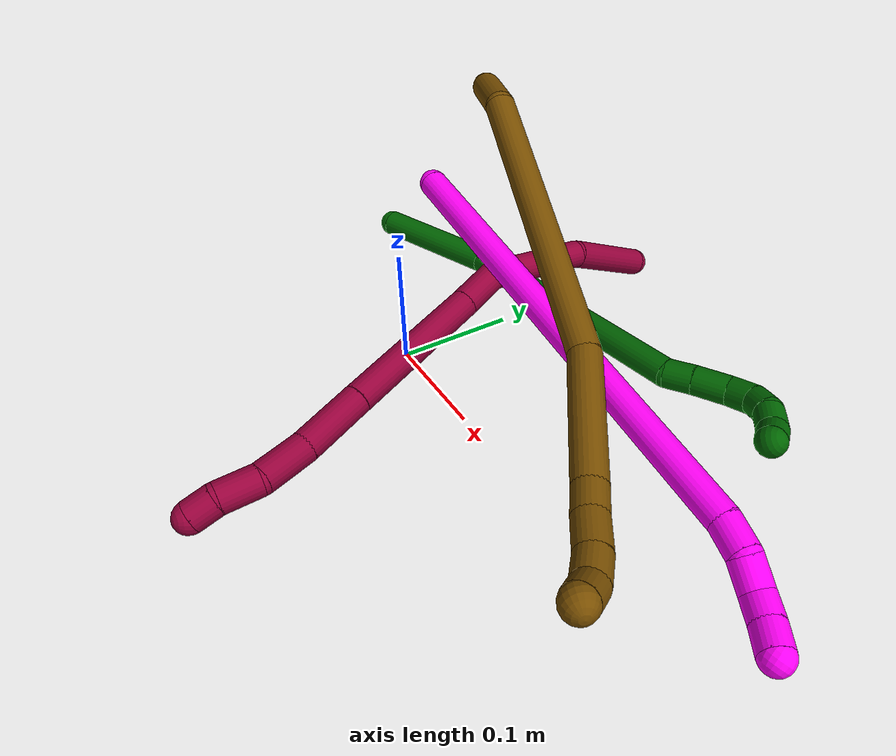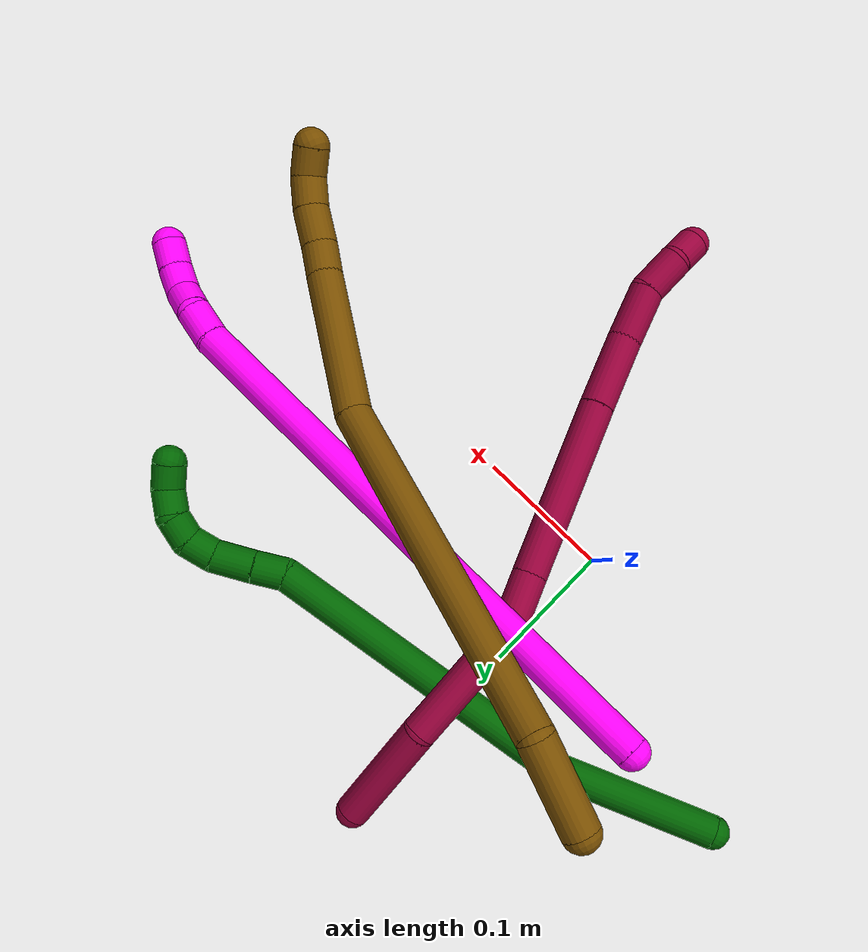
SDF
<sdf version="1.7">
 <world name="default">
  <model name="6">
   <static>0</static>
   <link name="6">
    <collision name="collision-cylinder-e_1_1_4">
     <pose>0.035066 0.021252 0.044017 -0.449797 0.62232 -0.146883</pose>
     <geometry><cylinder><radius>0.0125</radius><length>0.120313</length></cylinder></geometry>
     <surface>
      <friction><ode><mu>1.16</mu><mu2>1.16</mu2><slip1>0</slip1><slip2>0</slip2></ode></friction>
      <contact><ode><kp>1e+06</kp><kd>1</kd><max_vel>0</max_vel><min_depth>0.001</min_depth></ode></contact>
     </surface>
    </collision>
    <visual name="visual-cylinder-e_1_1_4">
     <pose>0.035066 0.021252 0.044017 -0.449797 0.62232 -0.146883</pose>
     <geometry><cylinder><radius>0.0125</radius><length>0.120313</length></cylinder></geometry>
     <material><ambient>0 0.392157 0.003922 1</ambient></material>
    </visual>
    <collision name="collision-cylinder-e_2_4_5">
     <pose>0.150394 0.056611 0.17807 -0.155429 0.722045 -0.058787</pose>
     <geometry><cylinder><radius>0.0125</radius><length>0.242878</length></cylinder></geometry>
     <surface>
      <friction><ode><mu>1.16</mu><mu2>1.16</mu2><slip1>0</slip1><slip2>0</slip2></ode></friction>
      <contact><ode><kp>1e+06</kp><kd>1</kd><max_vel>0</max_vel><min_depth>0.001</min_depth></ode></contact>
     </surface>
    </collision>
    <visual name="visual-cylinder-e_2_4_5">
     <pose>0.150394 0.056611 0.17807 -0.155429 0.722045 -0.058787</pose>
     <geometry><cylinder><radius>0.0125</radius><length>0.242878</length></cylinder></geometry>
     <material><ambient>0 0.392157 0.003922 1</ambient></material>
    </visual>
    <collision name="collision-cylinder-e_3_5_6">
     <pose>0.235993 0.075945 0.277616 -0.502449 0.457126 -0.119265</pose>
     <geometry><cylinder><radius>0.0125</radius><length>0.024186</length></cylinder></geometry>
     <surface>
      <friction><ode><mu>1.16</mu><mu2>1.16</mu2><slip1>0</slip1><slip2>0</slip2></ode></friction>
      <contact><ode><kp>1e+06</kp><kd>1</kd><max_vel>0</max_vel><min_depth>0.001</min_depth></ode></contact>
     </surface>
    </collision>
    <visual name="visual-cylinder-e_3_5_6">
     <pose>0.235993 0.075945 0.277616 -0.502449 0.457126 -0.119265</pose>
     <geometry><cylinder><radius>0.0125</radius><length>0.024186</length></cylinder></geometry>
     <material><ambient>0 0.392157 0.003922 1</ambient></material>
    </visual>
    <collision name="collision-cylinder-e_4_6_7">
     <pose>0.248704 0.087517 0.298719 -0.500905 0.508865 -0.132868</pose>
     <geometry><cylinder><radius>0.0125</radius><length>0.030268</length></cylinder></geometry>
     <surface>
      <friction><ode><mu>1.16</mu><mu2>1.16</mu2><slip1>0</slip1><slip2>0</slip2></ode></friction>
      <contact><ode><kp>1e+06</kp><kd>1</kd><max_vel>0</max_vel><min_depth>0.001</min_depth></ode></contact>
     </surface>
    </collision>
    <visual name="visual-cylinder-e_4_6_7">
     <pose>0.248704 0.087517 0.298719 -0.500905 0.508865 -0.132868</pose>
     <geometry><cylinder><radius>0.0125</radius><length>0.030268</length></cylinder></geometry>
     <material><ambient>0 0.392157 0.003922 1</ambient></material>
    </visual>
    <collision name="collision-cylinder-e_5_7_8">
     <pose>0.261721 0.095209 0.31953 -0.144825 0.544747 -0.040517</pose>
     <geometry><cylinder><radius>0.0125</radius><length>0.021785</length></cylinder></geometry>
     <surface>
      <friction><ode><mu>1.16</mu><mu2>1.16</mu2><slip1>0</slip1><slip2>0</slip2></ode></friction>
      <contact><ode><kp>1e+06</kp><kd>1</kd><max_vel>0</max_vel><min_depth>0.001</min_depth></ode></contact>
     </surface>
    </collision>
    <visual name="visual-cylinder-e_5_7_8">
     <pose>0.261721 0.095209 0.31953 -0.144825 0.544747 -0.040517</pose>
     <geometry><cylinder><radius>0.0125</radius><length>0.021785</length></cylinder></geometry>
     <material><ambient>0 0.392157 0.003922 1</ambient></material>
    </visual>
    <collision name="collision-cylinder-e_6_8_9">
     <pose>0.273285 0.093093 0.336165 0.436498 0.626133 0.143341</pose>
     <geometry><cylinder><radius>0.0125</radius><length>0.0202</length></cylinder></geometry>
     <surface>
      <friction><ode><mu>1.16</mu><mu2>1.16</mu2><slip1>0</slip1><slip2>0</slip2></ode></friction>
      <contact><ode><kp>1e+06</kp><kd>1</kd><max_vel>0</max_vel><min_depth>0.001</min_depth></ode></contact>
     </surface>
    </collision>
    <visual name="visual-cylinder-e_6_8_9">
     <pose>0.273285 0.093093 0.336165 0.436498 0.626133 0.143341</pose>
     <geometry><cylinder><radius>0.0125</radius><length>0.0202</length></cylinder></geometry>
     <material><ambient>0 0.392157 0.003922 1</ambient></material>
    </visual>
    <collision name="collision-cylinder-e_7_9_10">
     <pose>0.287007 0.084265 0.347287 0.966641 0.874584 0.481194</pose>
     <geometry><cylinder><radius>0.0125</radius><length>0.020341</length></cylinder></geometry>
     <surface>
      <friction><ode><mu>1.16</mu><mu2>1.16</mu2><slip1>0</slip1><slip2>0</slip2></ode></friction>
      <contact><ode><kp>1e+06</kp><kd>1</kd><max_vel>0</max_vel><min_depth>0.001</min_depth></ode></contact>
     </surface>
    </collision>
    <visual name="visual-cylinder-e_7_9_10">
     <pose>0.287007 0.084265 0.347287 0.966641 0.874584 0.481194</pose>
     <geometry><cylinder><radius>0.0125</radius><length>0.020341</length></cylinder></geometry>
     <material><ambient>0 0.392157 0.003922 1</ambient></material>
    </visual>
    <collision name="collision-cylinder-e_8_10_2">
     <pose>0.298848 0.070622 0.354931 1.12654 0.41489 0.264284</pose>
     <geometry><cylinder><radius>0.0125</radius><length>0.02003</length></cylinder></geometry>
     <surface>
      <friction><ode><mu>1.16</mu><mu2>1.16</mu2><slip1>0</slip1><slip2>0</slip2></ode></friction>
      <contact><ode><kp>1e+06</kp><kd>1</kd><max_vel>0</max_vel><min_depth>0.001</min_depth></ode></contact>
     </surface>
    </collision>
    <visual name="visual-cylinder-e_8_10_2">
     <pose>0.298848 0.070622 0.354931 1.12654 0.41489 0.264284</pose>
     <geometry><cylinder><radius>0.0125</radius><length>0.02003</length></cylinder></geometry>
     <material><ambient>0 0.392157 0.003922 1</ambient></material>
    </visual>
    <collision name="collision-sphere-2">
     <pose>0.302884 0.062346 0.35887 0 -0 0</pose>
     <geometry><sphere><radius>0.0125</radius></sphere></geometry>
     <surface>
      <friction><ode><mu>1.16</mu><mu2>1.16</mu2><slip1>0</slip1><slip2>0</slip2></ode></friction>
      <contact><ode><kp>1e+06</kp><kd>1</kd><max_vel>0</max_vel><min_depth>0.001</min_depth></ode></contact>
     </surface>
    </collision>
    <visual name="visual-sphere-2">
     <pose>0.302884 0.062346 0.35887 0 -0 0</pose>
     <geometry><sphere><radius>0.0125</radius></sphere></geometry>
     <material><ambient>0 0.392157 0.003922 1</ambient></material>
    </visual>
    <collision name="collision-sphere-10">
     <pose>0.294811 0.078898 0.350992 0 -0 0</pose>
     <geometry><sphere><radius>0.0125</radius></sphere></geometry>
     <surface>
      <friction><ode><mu>1.16</mu><mu2>1.16</mu2><slip1>0</slip1><slip2>0</slip2></ode></friction>
      <contact><ode><kp>1e+06</kp><kd>1</kd><max_vel>0</max_vel><min_depth>0.001</min_depth></ode></contact>
     </surface>
    </collision>
    <visual name="visual-sphere-10">
     <pose>0.294811 0.078898 0.350992 0 -0 0</pose>
     <geometry><sphere><radius>0.0125</radius></sphere></geometry>
     <material><ambient>0 0.392157 0.003922 1</ambient></material>
    </visual>
    <collision name="collision-sphere-9">
     <pose>0.279203 0.089633 0.343581 0 -0 0</pose>
     <geometry><sphere><radius>0.0125</radius></sphere></geometry>
     <surface>
      <friction><ode><mu>1.16</mu><mu2>1.16</mu2><slip1>0</slip1><slip2>0</slip2></ode></friction>
      <contact><ode><kp>1e+06</kp><kd>1</kd><max_vel>0</max_vel><min_depth>0.001</min_depth></ode></contact>
     </surface>
    </collision>
    <visual name="visual-sphere-9">
     <pose>0.279203 0.089633 0.343581 0 -0 0</pose>
     <geometry><sphere><radius>0.0125</radius></sphere></geometry>
     <material><ambient>0 0.392157 0.003922 1</ambient></material>
    </visual>
    <collision name="collision-sphere-4">
     <pose>0.070133 0.042503 0.088034 0 -0 0</pose>
     <geometry><sphere><radius>0.0125</radius></sphere></geometry>
     <surface>
      <friction><ode><mu>1.16</mu><mu2>1.16</mu2><slip1>0</slip1><slip2>0</slip2></ode></friction>
      <contact><ode><kp>1e+06</kp><kd>1</kd><max_vel>0</max_vel><min_depth>0.001</min_depth></ode></contact>
     </surface>
    </collision>
    <visual name="visual-sphere-4">
     <pose>0.070133 0.042503 0.088034 0 -0 0</pose>
     <geometry><sphere><radius>0.0125</radius></sphere></geometry>
     <material><ambient>0 0.392157 0.003922 1</ambient></material>
    </visual>
    <collision name="collision-sphere-1">
     <geometry><sphere><radius>0.0125</radius></sphere></geometry>
     <surface>
      <friction><ode><mu>1.16</mu><mu2>1.16</mu2><slip1>0</slip1><slip2>0</slip2></ode></friction>
      <contact><ode><kp>1e+06</kp><kd>1</kd><max_vel>0</max_vel><min_depth>0.001</min_depth></ode></contact>
     </surface>
    </collision>
    <visual name="visual-sphere-1">
     <geometry><sphere><radius>0.0125</radius></sphere></geometry>
     <material><ambient>0 0.392157 0.003922 1</ambient></material>
    </visual>
    <collision name="collision-sphere-8">
     <pose>0.267366 0.096553 0.328748 0 -0 0</pose>
     <geometry><sphere><radius>0.0125</radius></sphere></geometry>
     <surface>
      <friction><ode><mu>1.16</mu><mu2>1.16</mu2><slip1>0</slip1><slip2>0</slip2></ode></friction>
      <contact><ode><kp>1e+06</kp><kd>1</kd><max_vel>0</max_vel><min_depth>0.001</min_depth></ode></contact>
     </surface>
    </collision>
    <visual name="visual-sphere-8">
     <pose>0.267366 0.096553 0.328748 0 -0 0</pose>
     <geometry><sphere><radius>0.0125</radius></sphere></geometry>
     <material><ambient>0 0.392157 0.003922 1</ambient></material>
    </visual>
    <collision name="collision-sphere-5">
     <pose>0.230656 0.070719 0.268106 0 -0 0</pose>
     <geometry><sphere><radius>0.0125</radius></sphere></geometry>
     <surface>
      <friction><ode><mu>1.16</mu><mu2>1.16</mu2><slip1>0</slip1><slip2>0</slip2></ode></friction>
      <contact><ode><kp>1e+06</kp><kd>1</kd><max_vel>0</max_vel><min_depth>0.001</min_depth></ode></contact>
     </surface>
    </collision>
    <visual name="visual-sphere-5">
     <pose>0.230656 0.070719 0.268106 0 -0 0</pose>
     <geometry><sphere><radius>0.0125</radius></sphere></geometry>
     <material><ambient>0 0.392157 0.003922 1</ambient></material>
    </visual>
    <collision name="collision-sphere-6">
     <pose>0.241331 0.081171 0.287126 0 -0 0</pose>
     <geometry><sphere><radius>0.0125</radius></sphere></geometry>
     <surface>
      <friction><ode><mu>1.16</mu><mu2>1.16</mu2><slip1>0</slip1><slip2>0</slip2></ode></friction>
      <contact><ode><kp>1e+06</kp><kd>1</kd><max_vel>0</max_vel><min_depth>0.001</min_depth></ode></contact>
     </surface>
    </collision>
    <visual name="visual-sphere-6">
     <pose>0.241331 0.081171 0.287126 0 -0 0</pose>
     <geometry><sphere><radius>0.0125</radius></sphere></geometry>
     <material><ambient>0 0.392157 0.003922 1</ambient></material>
    </visual>
    <collision name="collision-sphere-7">
     <pose>0.256077 0.093864 0.310311 0 -0 0</pose>
     <geometry><sphere><radius>0.0125</radius></sphere></geometry>
     <surface>
      <friction><ode><mu>1.16</mu><mu2>1.16</mu2><slip1>0</slip1><slip2>0</slip2></ode></friction>
      <contact><ode><kp>1e+06</kp><kd>1</kd><max_vel>0</max_vel><min_depth>0.001</min_depth></ode></contact>
     </surface>
    </collision>
    <visual name="visual-sphere-7">
     <pose>0.256077 0.093864 0.310311 0 -0 0</pose>
     <geometry><sphere><radius>0.0125</radius></sphere></geometry>
     <material><ambient>0 0.392157 0.003922 1</ambient></material>
    </visual>
    <inertial>
     <pose>0.154055 0.055751 0.184452 0 -0 0</pose>
     <mass>0.5</mass>
     <inertia>
      <ixx>0.000985</ixx>
      <ixy>0</ixy>
      <ixz>0</ixz>
      <iyy>0.001277</iyy>
      <iyz>0</iyz>
      <izz>-0.001054</izz>
     </inertia>
    </inertial>
   </link>
   <pose>-0.196456 0.084217 0.01472 -0.519077 0.704249 -0.349433</pose>
  </model>
  <model name="8">
   <static>0</static>
   <link name="8">
    <collision name="collision-cylinder-e_1_1_4">
     <pose>-0.009917 0.004295 -0.042234 -3.04026 -0.229482 2.31254</pose>
     <geometry><cylinder><radius>0.0125</radius><length>0.087189</length></cylinder></geometry>
     <surface>
      <friction><ode><mu>1.16</mu><mu2>1.16</mu2><slip1>0</slip1><slip2>0</slip2></ode></friction>
      <contact><ode><kp>1e+06</kp><kd>1</kd><max_vel>0</max_vel><min_depth>0.001</min_depth></ode></contact>
     </surface>
    </collision>
    <visual name="visual-cylinder-e_1_1_4">
     <pose>-0.009917 0.004295 -0.042234 -3.04026 -0.229482 2.31254</pose>
     <geometry><cylinder><radius>0.0125</radius><length>0.087189</length></cylinder></geometry>
     <material><ambient>0.584314 0 0.227451 1</ambient></material>
    </visual>
    <collision name="collision-cylinder-e_2_4_5">
     <pose>-0.015026 0.009467 -0.13114 -3.12279 0.102614 -2.77946</pose>
     <geometry><cylinder><radius>0.0125</radius><length>0.093854</length></cylinder></geometry>
     <surface>
      <friction><ode><mu>1.16</mu><mu2>1.16</mu2><slip1>0</slip1><slip2>0</slip2></ode></friction>
      <contact><ode><kp>1e+06</kp><kd>1</kd><max_vel>0</max_vel><min_depth>0.001</min_depth></ode></contact>
     </surface>
    </collision>
    <visual name="visual-cylinder-e_2_4_5">
     <pose>-0.015026 0.009467 -0.13114 -3.12279 0.102614 -2.77946</pose>
     <geometry><cylinder><radius>0.0125</radius><length>0.093854</length></cylinder></geometry>
     <material><ambient>0.584314 0 0.227451 1</ambient></material>
    </visual>
    <collision name="collision-cylinder-e_3_5_6">
     <pose>-0.005387 0.002519 -0.196423 2.74357 0.234907 1.05874</pose>
     <geometry><cylinder><radius>0.0125</radius><length>0.041519</length></cylinder></geometry>
     <surface>
      <friction><ode><mu>1.16</mu><mu2>1.16</mu2><slip1>0</slip1><slip2>0</slip2></ode></friction>
      <contact><ode><kp>1e+06</kp><kd>1</kd><max_vel>0</max_vel><min_depth>0.001</min_depth></ode></contact>
     </surface>
    </collision>
    <visual name="visual-cylinder-e_3_5_6">
     <pose>-0.005387 0.002519 -0.196423 2.74357 0.234907 1.05874</pose>
     <geometry><cylinder><radius>0.0125</radius><length>0.041519</length></cylinder></geometry>
     <material><ambient>0.584314 0 0.227451 1</ambient></material>
    </visual>
    <collision name="collision-cylinder-e_4_6_7">
     <pose>0.012442 -0.028807 -0.274762 2.76674 0.199803 0.972398</pose>
     <geometry><cylinder><radius>0.0125</radius><length>0.130975</length></cylinder></geometry>
     <surface>
      <friction><ode><mu>1.16</mu><mu2>1.16</mu2><slip1>0</slip1><slip2>0</slip2></ode></friction>
      <contact><ode><kp>1e+06</kp><kd>1</kd><max_vel>0</max_vel><min_depth>0.001</min_depth></ode></contact>
     </surface>
    </collision>
    <visual name="visual-cylinder-e_4_6_7">
     <pose>0.012442 -0.028807 -0.274762 2.76674 0.199803 0.972398</pose>
     <geometry><cylinder><radius>0.0125</radius><length>0.130975</length></cylinder></geometry>
     <material><ambient>0.584314 0 0.227451 1</ambient></material>
    </visual>
    <collision name="collision-cylinder-e_5_7_8">
     <pose>0.031868 -0.061995 -0.359298 2.7693 0.236846 1.1269</pose>
     <geometry><cylinder><radius>0.0125</radius><length>0.054796</length></cylinder></geometry>
     <surface>
      <friction><ode><mu>1.16</mu><mu2>1.16</mu2><slip1>0</slip1><slip2>0</slip2></ode></friction>
      <contact><ode><kp>1e+06</kp><kd>1</kd><max_vel>0</max_vel><min_depth>0.001</min_depth></ode></contact>
     </surface>
    </collision>
    <visual name="visual-cylinder-e_5_7_8">
     <pose>0.031868 -0.061995 -0.359298 2.7693 0.236846 1.1269</pose>
     <geometry><cylinder><radius>0.0125</radius><length>0.054796</length></cylinder></geometry>
     <material><ambient>0.584314 0 0.227451 1</ambient></material>
    </visual>
    <collision name="collision-cylinder-e_6_8_9">
     <pose>0.040616 -0.077514 -0.403138 2.84427 0.115993 0.739673</pose>
     <geometry><cylinder><radius>0.0125</radius><length>0.040078</length></cylinder></geometry>
     <surface>
      <friction><ode><mu>1.16</mu><mu2>1.16</mu2><slip1>0</slip1><slip2>0</slip2></ode></friction>
      <contact><ode><kp>1e+06</kp><kd>1</kd><max_vel>0</max_vel><min_depth>0.001</min_depth></ode></contact>
     </surface>
    </collision>
    <visual name="visual-cylinder-e_6_8_9">
     <pose>0.040616 -0.077514 -0.403138 2.84427 0.115993 0.739673</pose>
     <geometry><cylinder><radius>0.0125</radius><length>0.040078</length></cylinder></geometry>
     <material><ambient>0.584314 0 0.227451 1</ambient></material>
    </visual>
    <collision name="collision-cylinder-e_7_9_10">
     <pose>0.046973 -0.083292 -0.4372 -3.13803 0.262402 -3.11461</pose>
     <geometry><cylinder><radius>0.0125</radius><length>0.031129</length></cylinder></geometry>
     <surface>
      <friction><ode><mu>1.16</mu><mu2>1.16</mu2><slip1>0</slip1><slip2>0</slip2></ode></friction>
      <contact><ode><kp>1e+06</kp><kd>1</kd><max_vel>0</max_vel><min_depth>0.001</min_depth></ode></contact>
     </surface>
    </collision>
    <visual name="visual-cylinder-e_7_9_10">
     <pose>0.046973 -0.083292 -0.4372 -3.13803 0.262402 -3.11461</pose>
     <geometry><cylinder><radius>0.0125</radius><length>0.031129</length></cylinder></geometry>
     <material><ambient>0.584314 0 0.227451 1</ambient></material>
    </visual>
    <collision name="collision-cylinder-e_8_10_2">
     <pose>0.056377 -0.084144 -0.460894 3.03742 0.552285 2.77773</pose>
     <geometry><cylinder><radius>0.0125</radius><length>0.02046</length></cylinder></geometry>
     <surface>
      <friction><ode><mu>1.16</mu><mu2>1.16</mu2><slip1>0</slip1><slip2>0</slip2></ode></friction>
      <contact><ode><kp>1e+06</kp><kd>1</kd><max_vel>0</max_vel><min_depth>0.001</min_depth></ode></contact>
     </surface>
    </collision>
    <visual name="visual-cylinder-e_8_10_2">
     <pose>0.056377 -0.084144 -0.460894 3.03742 0.552285 2.77773</pose>
     <geometry><cylinder><radius>0.0125</radius><length>0.02046</length></cylinder></geometry>
     <material><ambient>0.584314 0 0.227451 1</ambient></material>
    </visual>
    <collision name="collision-sphere-2">
     <pose>0.061744 -0.08505 -0.469556 0 -0 0</pose>
     <geometry><sphere><radius>0.0125</radius></sphere></geometry>
     <surface>
      <friction><ode><mu>1.16</mu><mu2>1.16</mu2><slip1>0</slip1><slip2>0</slip2></ode></friction>
      <contact><ode><kp>1e+06</kp><kd>1</kd><max_vel>0</max_vel><min_depth>0.001</min_depth></ode></contact>
     </surface>
    </collision>
    <visual name="visual-sphere-2">
     <pose>0.061744 -0.08505 -0.469556 0 -0 0</pose>
     <geometry><sphere><radius>0.0125</radius></sphere></geometry>
     <material><ambient>0.584314 0 0.227451 1</ambient></material>
    </visual>
    <collision name="collision-sphere-10">
     <pose>0.05101 -0.083239 -0.452232 0 -0 0</pose>
     <geometry><sphere><radius>0.0125</radius></sphere></geometry>
     <surface>
      <friction><ode><mu>1.16</mu><mu2>1.16</mu2><slip1>0</slip1><slip2>0</slip2></ode></friction>
      <contact><ode><kp>1e+06</kp><kd>1</kd><max_vel>0</max_vel><min_depth>0.001</min_depth></ode></contact>
     </surface>
    </collision>
    <visual name="visual-sphere-10">
     <pose>0.05101 -0.083239 -0.452232 0 -0 0</pose>
     <geometry><sphere><radius>0.0125</radius></sphere></geometry>
     <material><ambient>0.584314 0 0.227451 1</ambient></material>
    </visual>
    <collision name="collision-sphere-9">
     <pose>0.042935 -0.083346 -0.422169 0 -0 0</pose>
     <geometry><sphere><radius>0.0125</radius></sphere></geometry>
     <surface>
      <friction><ode><mu>1.16</mu><mu2>1.16</mu2><slip1>0</slip1><slip2>0</slip2></ode></friction>
      <contact><ode><kp>1e+06</kp><kd>1</kd><max_vel>0</max_vel><min_depth>0.001</min_depth></ode></contact>
     </surface>
    </collision>
    <visual name="visual-sphere-9">
     <pose>0.042935 -0.083346 -0.422169 0 -0 0</pose>
     <geometry><sphere><radius>0.0125</radius></sphere></geometry>
     <material><ambient>0.584314 0 0.227451 1</ambient></material>
    </visual>
    <collision name="collision-sphere-4">
     <pose>-0.019833 0.008589 -0.084468 0 -0 0</pose>
     <geometry><sphere><radius>0.0125</radius></sphere></geometry>
     <surface>
      <friction><ode><mu>1.16</mu><mu2>1.16</mu2><slip1>0</slip1><slip2>0</slip2></ode></friction>
      <contact><ode><kp>1e+06</kp><kd>1</kd><max_vel>0</max_vel><min_depth>0.001</min_depth></ode></contact>
     </surface>
    </collision>
    <visual name="visual-sphere-4">
     <pose>-0.019833 0.008589 -0.084468 0 -0 0</pose>
     <geometry><sphere><radius>0.0125</radius></sphere></geometry>
     <material><ambient>0.584314 0 0.227451 1</ambient></material>
    </visual>
    <collision name="collision-sphere-1">
     <geometry><sphere><radius>0.0125</radius></sphere></geometry>
     <surface>
      <friction><ode><mu>1.16</mu><mu2>1.16</mu2><slip1>0</slip1><slip2>0</slip2></ode></friction>
      <contact><ode><kp>1e+06</kp><kd>1</kd><max_vel>0</max_vel><min_depth>0.001</min_depth></ode></contact>
     </surface>
    </collision>
    <visual name="visual-sphere-1">
     <geometry><sphere><radius>0.0125</radius></sphere></geometry>
     <material><ambient>0.584314 0 0.227451 1</ambient></material>
    </visual>
    <collision name="collision-sphere-8">
     <pose>0.038297 -0.071683 -0.384107 0 -0 0</pose>
     <geometry><sphere><radius>0.0125</radius></sphere></geometry>
     <surface>
      <friction><ode><mu>1.16</mu><mu2>1.16</mu2><slip1>0</slip1><slip2>0</slip2></ode></friction>
      <contact><ode><kp>1e+06</kp><kd>1</kd><max_vel>0</max_vel><min_depth>0.001</min_depth></ode></contact>
     </surface>
    </collision>
    <visual name="visual-sphere-8">
     <pose>0.038297 -0.071683 -0.384107 0 -0 0</pose>
     <geometry><sphere><radius>0.0125</radius></sphere></geometry>
     <material><ambient>0.584314 0 0.227451 1</ambient></material>
    </visual>
    <collision name="collision-sphere-5">
     <pose>-0.010219 0.010344 -0.177811 0 -0 0</pose>
     <geometry><sphere><radius>0.0125</radius></sphere></geometry>
     <surface>
      <friction><ode><mu>1.16</mu><mu2>1.16</mu2><slip1>0</slip1><slip2>0</slip2></ode></friction>
      <contact><ode><kp>1e+06</kp><kd>1</kd><max_vel>0</max_vel><min_depth>0.001</min_depth></ode></contact>
     </surface>
    </collision>
    <visual name="visual-sphere-5">
     <pose>-0.010219 0.010344 -0.177811 0 -0 0</pose>
     <geometry><sphere><radius>0.0125</radius></sphere></geometry>
     <material><ambient>0.584314 0 0.227451 1</ambient></material>
    </visual>
    <collision name="collision-sphere-6">
     <pose>-0.000556 -0.005306 -0.215034 0 -0 0</pose>
     <geometry><sphere><radius>0.0125</radius></sphere></geometry>
     <surface>
      <friction><ode><mu>1.16</mu><mu2>1.16</mu2><slip1>0</slip1><slip2>0</slip2></ode></friction>
      <contact><ode><kp>1e+06</kp><kd>1</kd><max_vel>0</max_vel><min_depth>0.001</min_depth></ode></contact>
     </surface>
    </collision>
    <visual name="visual-sphere-6">
     <pose>-0.000556 -0.005306 -0.215034 0 -0 0</pose>
     <geometry><sphere><radius>0.0125</radius></sphere></geometry>
     <material><ambient>0.584314 0 0.227451 1</ambient></material>
    </visual>
    <collision name="collision-sphere-7">
     <pose>0.02544 -0.052307 -0.334489 0 -0 0</pose>
     <geometry><sphere><radius>0.0125</radius></sphere></geometry>
     <surface>
      <friction><ode><mu>1.16</mu><mu2>1.16</mu2><slip1>0</slip1><slip2>0</slip2></ode></friction>
      <contact><ode><kp>1e+06</kp><kd>1</kd><max_vel>0</max_vel><min_depth>0.001</min_depth></ode></contact>
     </surface>
    </collision>
    <visual name="visual-sphere-7">
     <pose>0.02544 -0.052307 -0.334489 0 -0 0</pose>
     <geometry><sphere><radius>0.0125</radius></sphere></geometry>
     <material><ambient>0.584314 0 0.227451 1</ambient></material>
    </visual>
    <inertial>
     <pose>0.010242 -0.026447 -0.238034 0 -0 0</pose>
     <mass>0.5</mass>
     <inertia><ixx>0.000213</ixx><ixy>0</ixy><ixz>0</ixz><iyy>0.000202</iyy><iyz>0</iyz><izz>-5e-06</izz></inertia>
    </inertial>
   </link>
   <pose>0.002271 0.252331 0.014857 2.07602 1.14416 -2.57102</pose>
  </model>
  <model name="10">
   <static>0</static>
   <link name="10">
    <collision name="collision-cylinder-e_1_1_4">
     <pose>0.188532 0.059559 0.053458 -0.839329 1.16935 -0.574291</pose>
     <geometry><cylinder><radius>0.0125</radius><length>0.409632</length></cylinder></geometry>
     <surface>
      <friction><ode><mu>1.16</mu><mu2>1.16</mu2><slip1>0</slip1><slip2>0</slip2></ode></friction>
      <contact><ode><kp>1e+06</kp><kd>1</kd><max_vel>0</max_vel><min_depth>0.001</min_depth></ode></contact>
     </surface>
    </collision>
    <visual name="visual-cylinder-e_1_1_4">
     <pose>0.188532 0.059559 0.053458 -0.839329 1.16935 -0.574291</pose>
     <geometry><cylinder><radius>0.0125</radius><length>0.409632</length></cylinder></geometry>
     <material><ambient>1 0 0.964706 1</ambient></material>
    </visual>
    <collision name="collision-cylinder-e_2_4_5">
     <pose>0.387838 0.123769 0.11239 -0.704354 0.98277 -0.388389</pose>
     <geometry><cylinder><radius>0.0125</radius><length>0.025896</length></cylinder></geometry>
     <surface>
      <friction><ode><mu>1.16</mu><mu2>1.16</mu2><slip1>0</slip1><slip2>0</slip2></ode></friction>
      <contact><ode><kp>1e+06</kp><kd>1</kd><max_vel>0</max_vel><min_depth>0.001</min_depth></ode></contact>
     </surface>
    </collision>
    <visual name="visual-cylinder-e_2_4_5">
     <pose>0.387838 0.123769 0.11239 -0.704354 0.98277 -0.388389</pose>
     <geometry><cylinder><radius>0.0125</radius><length>0.025896</length></cylinder></geometry>
     <material><ambient>1 0 0.964706 1</ambient></material>
    </visual>
    <collision name="collision-cylinder-e_3_5_6">
     <pose>0.407976 0.12848 0.125432 -0.007832 0.891031 -0.00374</pose>
     <geometry><cylinder><radius>0.0125</radius><length>0.024084</length></cylinder></geometry>
     <surface>
      <friction><ode><mu>1.16</mu><mu2>1.16</mu2><slip1>0</slip1><slip2>0</slip2></ode></friction>
      <contact><ode><kp>1e+06</kp><kd>1</kd><max_vel>0</max_vel><min_depth>0.001</min_depth></ode></contact>
     </surface>
    </collision>
    <visual name="visual-cylinder-e_3_5_6">
     <pose>0.407976 0.12848 0.125432 -0.007832 0.891031 -0.00374</pose>
     <geometry><cylinder><radius>0.0125</radius><length>0.024084</length></cylinder></geometry>
     <material><ambient>1 0 0.964706 1</ambient></material>
    </visual>
    <collision name="collision-cylinder-e_4_6_7">
     <pose>0.42407 0.133563 0.13852 -0.738615 0.733718 -0.295299</pose>
     <geometry><cylinder><radius>0.0125</radius><length>0.020097</length></cylinder></geometry>
     <surface>
      <friction><ode><mu>1.16</mu><mu2>1.16</mu2><slip1>0</slip1><slip2>0</slip2></ode></friction>
      <contact><ode><kp>1e+06</kp><kd>1</kd><max_vel>0</max_vel><min_depth>0.001</min_depth></ode></contact>
     </surface>
    </collision>
    <visual name="visual-cylinder-e_4_6_7">
     <pose>0.42407 0.133563 0.13852 -0.738615 0.733718 -0.295299</pose>
     <geometry><cylinder><radius>0.0125</radius><length>0.020097</length></cylinder></geometry>
     <material><ambient>1 0 0.964706 1</ambient></material>
    </visual>
    <collision name="collision-cylinder-e_5_7_2">
     <pose>0.436904 0.144232 0.149853 -0.770517 0.6457 -0.269693</pose>
     <geometry><cylinder><radius>0.0125</radius><length>0.020292</length></cylinder></geometry>
     <surface>
      <friction><ode><mu>1.16</mu><mu2>1.16</mu2><slip1>0</slip1><slip2>0</slip2></ode></friction>
      <contact><ode><kp>1e+06</kp><kd>1</kd><max_vel>0</max_vel><min_depth>0.001</min_depth></ode></contact>
     </surface>
    </collision>
    <visual name="visual-cylinder-e_5_7_2">
     <pose>0.436904 0.144232 0.149853 -0.770517 0.6457 -0.269693</pose>
     <geometry><cylinder><radius>0.0125</radius><length>0.020292</length></cylinder></geometry>
     <material><ambient>1 0 0.964706 1</ambient></material>
    </visual>
    <collision name="collision-sphere-2">
     <pose>0.44301 0.149876 0.155667 0 -0 0</pose>
     <geometry><sphere><radius>0.0125</radius></sphere></geometry>
     <surface>
      <friction><ode><mu>1.16</mu><mu2>1.16</mu2><slip1>0</slip1><slip2>0</slip2></ode></friction>
      <contact><ode><kp>1e+06</kp><kd>1</kd><max_vel>0</max_vel><min_depth>0.001</min_depth></ode></contact>
     </surface>
    </collision>
    <visual name="visual-sphere-2">
     <pose>0.44301 0.149876 0.155667 0 -0 0</pose>
     <geometry><sphere><radius>0.0125</radius></sphere></geometry>
     <material><ambient>1 0 0.964706 1</ambient></material>
    </visual>
    <collision name="collision-sphere-7">
     <pose>0.430799 0.138588 0.144038 0 -0 0</pose>
     <geometry><sphere><radius>0.0125</radius></sphere></geometry>
     <surface>
      <friction><ode><mu>1.16</mu><mu2>1.16</mu2><slip1>0</slip1><slip2>0</slip2></ode></friction>
      <contact><ode><kp>1e+06</kp><kd>1</kd><max_vel>0</max_vel><min_depth>0.001</min_depth></ode></contact>
     </surface>
    </collision>
    <visual name="visual-sphere-7">
     <pose>0.430799 0.138588 0.144038 0 -0 0</pose>
     <geometry><sphere><radius>0.0125</radius></sphere></geometry>
     <material><ambient>1 0 0.964706 1</ambient></material>
    </visual>
    <collision name="collision-sphere-6">
     <pose>0.417341 0.128539 0.133002 0 -0 0</pose>
     <geometry><sphere><radius>0.0125</radius></sphere></geometry>
     <surface>
      <friction><ode><mu>1.16</mu><mu2>1.16</mu2><slip1>0</slip1><slip2>0</slip2></ode></friction>
      <contact><ode><kp>1e+06</kp><kd>1</kd><max_vel>0</max_vel><min_depth>0.001</min_depth></ode></contact>
     </surface>
    </collision>
    <visual name="visual-sphere-6">
     <pose>0.417341 0.128539 0.133002 0 -0 0</pose>
     <geometry><sphere><radius>0.0125</radius></sphere></geometry>
     <material><ambient>1 0 0.964706 1</ambient></material>
    </visual>
    <collision name="collision-sphere-5">
     <pose>0.398611 0.12842 0.117863 0 -0 0</pose>
     <geometry><sphere><radius>0.0125</radius></sphere></geometry>
     <surface>
      <friction><ode><mu>1.16</mu><mu2>1.16</mu2><slip1>0</slip1><slip2>0</slip2></ode></friction>
      <contact><ode><kp>1e+06</kp><kd>1</kd><max_vel>0</max_vel><min_depth>0.001</min_depth></ode></contact>
     </surface>
    </collision>
    <visual name="visual-sphere-5">
     <pose>0.398611 0.12842 0.117863 0 -0 0</pose>
     <geometry><sphere><radius>0.0125</radius></sphere></geometry>
     <material><ambient>1 0 0.964706 1</ambient></material>
    </visual>
    <collision name="collision-sphere-1">
     <geometry><sphere><radius>0.0125</radius></sphere></geometry>
     <surface>
      <friction><ode><mu>1.16</mu><mu2>1.16</mu2><slip1>0</slip1><slip2>0</slip2></ode></friction>
      <contact><ode><kp>1e+06</kp><kd>1</kd><max_vel>0</max_vel><min_depth>0.001</min_depth></ode></contact>
     </surface>
    </collision>
    <visual name="visual-sphere-1">
     <geometry><sphere><radius>0.0125</radius></sphere></geometry>
     <material><ambient>1 0 0.964706 1</ambient></material>
    </visual>
    <collision name="collision-sphere-4">
     <pose>0.377065 0.119118 0.106916 0 -0 0</pose>
     <geometry><sphere><radius>0.0125</radius></sphere></geometry>
     <surface>
      <friction><ode><mu>1.16</mu><mu2>1.16</mu2><slip1>0</slip1><slip2>0</slip2></ode></friction>
      <contact><ode><kp>1e+06</kp><kd>1</kd><max_vel>0</max_vel><min_depth>0.001</min_depth></ode></contact>
     </surface>
    </collision>
    <visual name="visual-sphere-4">
     <pose>0.377065 0.119118 0.106916 0 -0 0</pose>
     <geometry><sphere><radius>0.0125</radius></sphere></geometry>
     <material><ambient>1 0 0.964706 1</ambient></material>
    </visual>
    <inertial>
     <pose>0.228972 0.072615 0.067308 0 -0 0</pose>
     <mass>0.5</mass>
     <inertia>
      <ixx>0.000703</ixx>
      <ixy>0</ixy>
      <ixz>0</ixz>
      <iyy>0.004157</iyy>
      <iyz>0</iyz>
      <izz>-0.006953</izz>
     </inertia>
    </inertial>
   </link>
   <pose>-0.094087 0.082696 0.105833 2.27967 0.240067 0.387652</pose>
  </model>
  <model name="12">
   <static>0</static>
   <link name="12">
    <collision name="collision-cylinder-e_1_1_4">
     <pose>-0.000456 -0.000105 -0.030947 3.1382 -0.014726 -2.68847</pose>
     <geometry><cylinder><radius>0.0125</radius><length>0.061902</length></cylinder></geometry>
     <surface>
      <friction><ode><mu>1.16</mu><mu2>1.16</mu2><slip1>0</slip1><slip2>0</slip2></ode></friction>
      <contact><ode><kp>1e+06</kp><kd>1</kd><max_vel>0</max_vel><min_depth>0.001</min_depth></ode></contact>
     </surface>
    </collision>
    <visual name="visual-cylinder-e_1_1_4">
     <pose>-0.000456 -0.000105 -0.030947 3.1382 -0.014726 -2.68847</pose>
     <geometry><cylinder><radius>0.0125</radius><length>0.061902</length></cylinder></geometry>
     <material><ambient>0.466667 0.301961 0 1</ambient></material>
    </visual>
    <collision name="collision-cylinder-e_2_4_5">
     <pose>0.036393 -0.043047 -0.169388 2.76237 0.311862 1.37261</pose>
     <geometry><cylinder><radius>0.0125</radius><length>0.243157</length></cylinder></geometry>
     <surface>
      <friction><ode><mu>1.16</mu><mu2>1.16</mu2><slip1>0</slip1><slip2>0</slip2></ode></friction>
      <contact><ode><kp>1e+06</kp><kd>1</kd><max_vel>0</max_vel><min_depth>0.001</min_depth></ode></contact>
     </surface>
    </collision>
    <visual name="visual-cylinder-e_2_4_5">
     <pose>0.036393 -0.043047 -0.169388 2.76237 0.311862 1.37261</pose>
     <geometry><cylinder><radius>0.0125</radius><length>0.243157</length></cylinder></geometry>
     <material><ambient>0.466667 0.301961 0 1</ambient></material>
    </visual>
    <collision name="collision-cylinder-e_3_5_6">
     <pose>0.093743 -0.088665 -0.324458 3.08322 0.398165 2.85418</pose>
     <geometry><cylinder><radius>0.0125</radius><length>0.103407</length></cylinder></geometry>
     <surface>
      <friction><ode><mu>1.16</mu><mu2>1.16</mu2><slip1>0</slip1><slip2>0</slip2></ode></friction>
      <contact><ode><kp>1e+06</kp><kd>1</kd><max_vel>0</max_vel><min_depth>0.001</min_depth></ode></contact>
     </surface>
    </collision>
    <visual name="visual-cylinder-e_3_5_6">
     <pose>0.093743 -0.088665 -0.324458 3.08322 0.398165 2.85418</pose>
     <geometry><cylinder><radius>0.0125</radius><length>0.103407</length></cylinder></geometry>
     <material><ambient>0.466667 0.301961 0 1</ambient></material>
    </visual>
    <collision name="collision-cylinder-e_4_6_7">
     <pose>0.117328 -0.090811 -0.382556 -3.08135 0.323864 -2.77681</pose>
     <geometry><cylinder><radius>0.0125</radius><length>0.022233</length></cylinder></geometry>
     <surface>
      <friction><ode><mu>1.16</mu><mu2>1.16</mu2><slip1>0</slip1><slip2>0</slip2></ode></friction>
      <contact><ode><kp>1e+06</kp><kd>1</kd><max_vel>0</max_vel><min_depth>0.001</min_depth></ode></contact>
     </surface>
    </collision>
    <visual name="visual-cylinder-e_4_6_7">
     <pose>0.117328 -0.090811 -0.382556 -3.08135 0.323864 -2.77681</pose>
     <geometry><cylinder><radius>0.0125</radius><length>0.022233</length></cylinder></geometry>
     <material><ambient>0.466667 0.301961 0 1</ambient></material>
    </visual>
    <collision name="collision-cylinder-e_5_7_8">
     <pose>0.123948 -0.089269 -0.405914 -3.07107 0.235043 -2.5609</pose>
     <geometry><cylinder><radius>0.0125</radius><length>0.026469</length></cylinder></geometry>
     <surface>
      <friction><ode><mu>1.16</mu><mu2>1.16</mu2><slip1>0</slip1><slip2>0</slip2></ode></friction>
      <contact><ode><kp>1e+06</kp><kd>1</kd><max_vel>0</max_vel><min_depth>0.001</min_depth></ode></contact>
     </surface>
    </collision>
    <visual name="visual-cylinder-e_5_7_8">
     <pose>0.123948 -0.089269 -0.405914 -3.07107 0.235043 -2.5609</pose>
     <geometry><cylinder><radius>0.0125</radius><length>0.026469</length></cylinder></geometry>
     <material><ambient>0.466667 0.301961 0 1</ambient></material>
    </visual>
    <collision name="collision-cylinder-e_6_8_9">
     <pose>0.130005 -0.085831 -0.429187 -2.90355 0.270323 -1.69898</pose>
     <geometry><cylinder><radius>0.0125</radius><length>0.022283</length></cylinder></geometry>
     <surface>
      <friction><ode><mu>1.16</mu><mu2>1.16</mu2><slip1>0</slip1><slip2>0</slip2></ode></friction>
      <contact><ode><kp>1e+06</kp><kd>1</kd><max_vel>0</max_vel><min_depth>0.001</min_depth></ode></contact>
     </surface>
    </collision>
    <visual name="visual-cylinder-e_6_8_9">
     <pose>0.130005 -0.085831 -0.429187 -2.90355 0.270323 -1.69898</pose>
     <geometry><cylinder><radius>0.0125</radius><length>0.022283</length></cylinder></geometry>
     <material><ambient>0.466667 0.301961 0 1</ambient></material>
    </visual>
    <collision name="collision-cylinder-e_7_9_2">
     <pose>0.133588 -0.076935 -0.447664 -2.47228 0.059219 -0.169939</pose>
     <geometry><cylinder><radius>0.0125</radius><length>0.020549</length></cylinder></geometry>
     <surface>
      <friction><ode><mu>1.16</mu><mu2>1.16</mu2><slip1>0</slip1><slip2>0</slip2></ode></friction>
      <contact><ode><kp>1e+06</kp><kd>1</kd><max_vel>0</max_vel><min_depth>0.001</min_depth></ode></contact>
     </surface>
    </collision>
    <visual name="visual-cylinder-e_7_9_2">
     <pose>0.133588 -0.076935 -0.447664 -2.47228 0.059219 -0.169939</pose>
     <geometry><cylinder><radius>0.0125</radius><length>0.020549</length></cylinder></geometry>
     <material><ambient>0.466667 0.301961 0 1</ambient></material>
    </visual>
    <collision name="collision-sphere-2">
     <pose>0.134197 -0.070572 -0.455708 0 -0 0</pose>
     <geometry><sphere><radius>0.0125</radius></sphere></geometry>
     <surface>
      <friction><ode><mu>1.16</mu><mu2>1.16</mu2><slip1>0</slip1><slip2>0</slip2></ode></friction>
      <contact><ode><kp>1e+06</kp><kd>1</kd><max_vel>0</max_vel><min_depth>0.001</min_depth></ode></contact>
     </surface>
    </collision>
    <visual name="visual-sphere-2">
     <pose>0.134197 -0.070572 -0.455708 0 -0 0</pose>
     <geometry><sphere><radius>0.0125</radius></sphere></geometry>
     <material><ambient>0.466667 0.301961 0 1</ambient></material>
    </visual>
    <collision name="collision-sphere-9">
     <pose>0.13298 -0.083299 -0.439621 0 -0 0</pose>
     <geometry><sphere><radius>0.0125</radius></sphere></geometry>
     <surface>
      <friction><ode><mu>1.16</mu><mu2>1.16</mu2><slip1>0</slip1><slip2>0</slip2></ode></friction>
      <contact><ode><kp>1e+06</kp><kd>1</kd><max_vel>0</max_vel><min_depth>0.001</min_depth></ode></contact>
     </surface>
    </collision>
    <visual name="visual-sphere-9">
     <pose>0.13298 -0.083299 -0.439621 0 -0 0</pose>
     <geometry><sphere><radius>0.0125</radius></sphere></geometry>
     <material><ambient>0.466667 0.301961 0 1</ambient></material>
    </visual>
    <collision name="collision-sphere-4">
     <pose>-0.000912 -0.00021 -0.061895 0 -0 0</pose>
     <geometry><sphere><radius>0.0125</radius></sphere></geometry>
     <surface>
      <friction><ode><mu>1.16</mu><mu2>1.16</mu2><slip1>0</slip1><slip2>0</slip2></ode></friction>
      <contact><ode><kp>1e+06</kp><kd>1</kd><max_vel>0</max_vel><min_depth>0.001</min_depth></ode></contact>
     </surface>
    </collision>
    <visual name="visual-sphere-4">
     <pose>-0.000912 -0.00021 -0.061895 0 -0 0</pose>
     <geometry><sphere><radius>0.0125</radius></sphere></geometry>
     <material><ambient>0.466667 0.301961 0 1</ambient></material>
    </visual>
    <collision name="collision-sphere-1">
     <geometry><sphere><radius>0.0125</radius></sphere></geometry>
     <surface>
      <friction><ode><mu>1.16</mu><mu2>1.16</mu2><slip1>0</slip1><slip2>0</slip2></ode></friction>
      <contact><ode><kp>1e+06</kp><kd>1</kd><max_vel>0</max_vel><min_depth>0.001</min_depth></ode></contact>
     </surface>
    </collision>
    <visual name="visual-sphere-1">
     <geometry><sphere><radius>0.0125</radius></sphere></geometry>
     <material><ambient>0.466667 0.301961 0 1</ambient></material>
    </visual>
    <collision name="collision-sphere-8">
     <pose>0.12703 -0.088362 -0.418753 0 -0 0</pose>
     <geometry><sphere><radius>0.0125</radius></sphere></geometry>
     <surface>
      <friction><ode><mu>1.16</mu><mu2>1.16</mu2><slip1>0</slip1><slip2>0</slip2></ode></friction>
      <contact><ode><kp>1e+06</kp><kd>1</kd><max_vel>0</max_vel><min_depth>0.001</min_depth></ode></contact>
     </surface>
    </collision>
    <visual name="visual-sphere-8">
     <pose>0.12703 -0.088362 -0.418753 0 -0 0</pose>
     <geometry><sphere><radius>0.0125</radius></sphere></geometry>
     <material><ambient>0.466667 0.301961 0 1</ambient></material>
    </visual>
    <collision name="collision-sphere-5">
     <pose>0.073697 -0.085885 -0.27688 0 -0 0</pose>
     <geometry><sphere><radius>0.0125</radius></sphere></geometry>
     <surface>
      <friction><ode><mu>1.16</mu><mu2>1.16</mu2><slip1>0</slip1><slip2>0</slip2></ode></friction>
      <contact><ode><kp>1e+06</kp><kd>1</kd><max_vel>0</max_vel><min_depth>0.001</min_depth></ode></contact>
     </surface>
    </collision>
    <visual name="visual-sphere-5">
     <pose>0.073697 -0.085885 -0.27688 0 -0 0</pose>
     <geometry><sphere><radius>0.0125</radius></sphere></geometry>
     <material><ambient>0.466667 0.301961 0 1</ambient></material>
    </visual>
    <collision name="collision-sphere-6">
     <pose>0.11379 -0.091445 -0.372036 0 -0 0</pose>
     <geometry><sphere><radius>0.0125</radius></sphere></geometry>
     <surface>
      <friction><ode><mu>1.16</mu><mu2>1.16</mu2><slip1>0</slip1><slip2>0</slip2></ode></friction>
      <contact><ode><kp>1e+06</kp><kd>1</kd><max_vel>0</max_vel><min_depth>0.001</min_depth></ode></contact>
     </surface>
    </collision>
    <visual name="visual-sphere-6">
     <pose>0.11379 -0.091445 -0.372036 0 -0 0</pose>
     <geometry><sphere><radius>0.0125</radius></sphere></geometry>
     <material><ambient>0.466667 0.301961 0 1</ambient></material>
    </visual>
    <collision name="collision-sphere-7">
     <pose>0.120866 -0.090176 -0.393075 0 -0 0</pose>
     <geometry><sphere><radius>0.0125</radius></sphere></geometry>
     <surface>
      <friction><ode><mu>1.16</mu><mu2>1.16</mu2><slip1>0</slip1><slip2>0</slip2></ode></friction>
      <contact><ode><kp>1e+06</kp><kd>1</kd><max_vel>0</max_vel><min_depth>0.001</min_depth></ode></contact>
     </surface>
    </collision>
    <visual name="visual-sphere-7">
     <pose>0.120866 -0.090176 -0.393075 0 -0 0</pose>
     <geometry><sphere><radius>0.0125</radius></sphere></geometry>
     <material><ambient>0.466667 0.301961 0 1</ambient></material>
    </visual>
    <inertial>
     <pose>0.060092 -0.055035 -0.229334 0 -0 0</pose>
     <mass>0.5</mass>
     <inertia>
      <ixx>0.001268</ixx>
      <ixy>0</ixy>
      <ixz>0</ixz>
      <iyy>0.001162</iyy>
      <iyz>0</iyz>
      <izz>-1.6e-05</izz>
     </inertia>
    </inertial>
   </link>
   <pose>-0.084922 0.136336 0.190854 1.71575 0.862714 -1.83374</pose>
  </model>
 </world>
</sdf>
